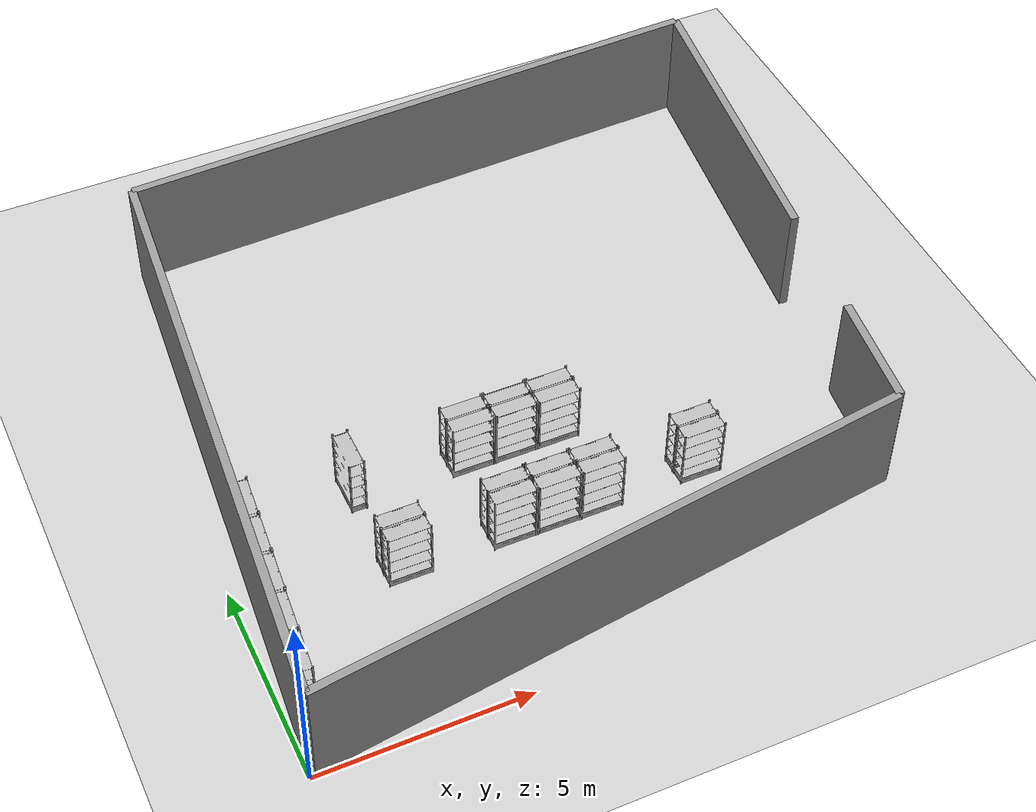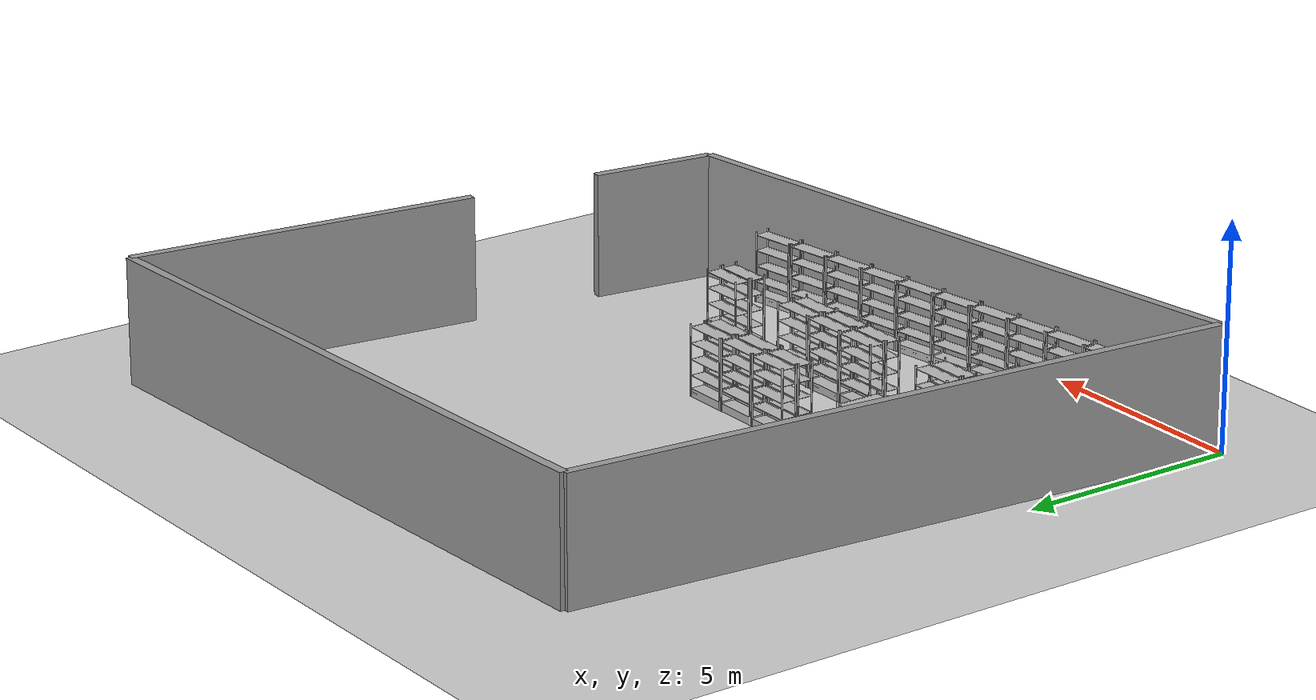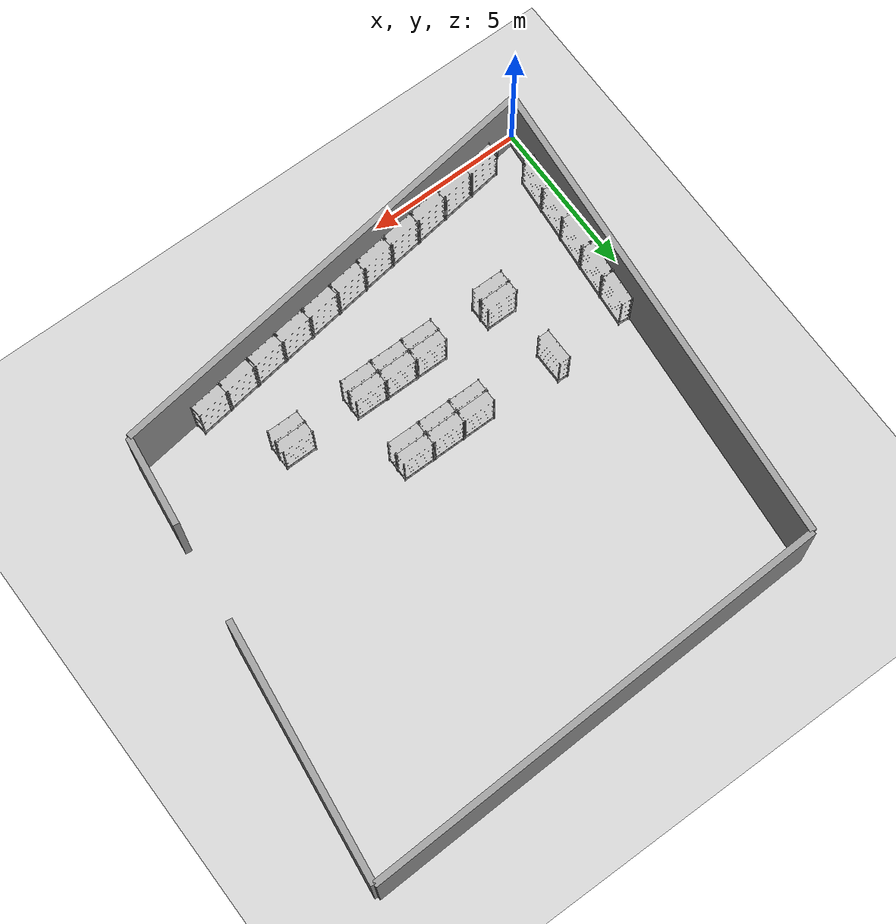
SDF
<sdf version="1.6">
 <world name="default">
  <model name="ground_plane">
   <static>1</static>
   <link name="link">
    <collision name="collision">
     <geometry><plane><normal>0 0 1</normal><size>100 100</size></plane></geometry>
     <surface>
      <contact><collide_bitmask>65535</collide_bitmask></contact>
      <friction><ode><mu>1000</mu><mu2>1000</mu2></ode></friction>
     </surface>
    </collision>
    <visual name="visual">
     <cast_shadows>0</cast_shadows>
     <geometry><plane><normal>0 0 1</normal><size>100 100</size></plane></geometry>
     <material>
      <script><uri>file://media/materials/scripts/gazebo.material</uri><name>Gazebo/Grey</name></script>
     </material>
    </visual>
   </link>
  </model>
  <model name="store_shelf_moduled_0">
   <link name="link">
    <collision name="collision">
     <geometry><mesh><uri>model://store_shelf_moduled/meshes/store_shelf_moduled.dae</uri></mesh></geometry>
    </collision>
    <visual name="visual">
     <geometry><mesh><uri>model://store_shelf_moduled/meshes/store_shelf_moduled.dae</uri></mesh></geometry>
    </visual>
    <inertial>
     <mass>1000</mass>
     <inertia>
      <ixx>840083</ixx>
      <ixy>0</ixy>
      <ixz>0</ixz>
      <iyy>475500</iyy>
      <iyz>0</iyz>
      <izz>1.30208e+06</izz>
     </inertia>
    </inertial>
   </link>
   <static>1</static>
   <pose>1.136614 0.3391 0 0 0 0.1342666</pose>
  </model>
  <model name="store_shelf_moduled_1">
   <link name="link">
    <collision name="collision">
     <geometry><mesh><uri>model://store_shelf_moduled/meshes/store_shelf_moduled.dae</uri></mesh></geometry>
    </collision>
    <visual name="visual">
     <geometry><mesh><uri>model://store_shelf_moduled/meshes/store_shelf_moduled.dae</uri></mesh></geometry>
    </visual>
    <inertial>
     <mass>1000</mass>
     <inertia>
      <ixx>840083</ixx>
      <ixy>0</ixy>
      <ixz>0</ixz>
      <iyy>475500</iyy>
      <iyz>0</iyz>
      <izz>1.30208e+06</izz>
     </inertia>
    </inertial>
   </link>
   <static>1</static>
   <pose>2.186614 0.4791 0 0 0 0.1342666</pose>
  </model>
  <model name="store_shelf_moduled_2">
   <link name="link">
    <collision name="collision">
     <geometry><mesh><uri>model://store_shelf_moduled/meshes/store_shelf_moduled.dae</uri></mesh></geometry>
    </collision>
    <visual name="visual">
     <geometry><mesh><uri>model://store_shelf_moduled/meshes/store_shelf_moduled.dae</uri></mesh></geometry>
    </visual>
    <inertial>
     <mass>1000</mass>
     <inertia>
      <ixx>840083</ixx>
      <ixy>0</ixy>
      <ixz>0</ixz>
      <iyy>475500</iyy>
      <iyz>0</iyz>
      <izz>1.30208e+06</izz>
     </inertia>
    </inertial>
   </link>
   <static>1</static>
   <pose>3.236614 0.6191 0 0 0 0.1342666</pose>
  </model>
  <model name="store_shelf_moduled_3">
   <link name="link">
    <collision name="collision">
     <geometry><mesh><uri>model://store_shelf_moduled/meshes/store_shelf_moduled.dae</uri></mesh></geometry>
    </collision>
    <visual name="visual">
     <geometry><mesh><uri>model://store_shelf_moduled/meshes/store_shelf_moduled.dae</uri></mesh></geometry>
    </visual>
    <inertial>
     <mass>1000</mass>
     <inertia>
      <ixx>840083</ixx>
      <ixy>0</ixy>
      <ixz>0</ixz>
      <iyy>475500</iyy>
      <iyz>0</iyz>
      <izz>1.30208e+06</izz>
     </inertia>
    </inertial>
   </link>
   <static>1</static>
   <pose>4.286614 0.7591 0 0 0 0.1342666</pose>
  </model>
  <model name="store_shelf_moduled_4">
   <link name="link">
    <collision name="collision">
     <geometry><mesh><uri>model://store_shelf_moduled/meshes/store_shelf_moduled.dae</uri></mesh></geometry>
    </collision>
    <visual name="visual">
     <geometry><mesh><uri>model://store_shelf_moduled/meshes/store_shelf_moduled.dae</uri></mesh></geometry>
    </visual>
    <inertial>
     <mass>1000</mass>
     <inertia>
      <ixx>840083</ixx>
      <ixy>0</ixy>
      <ixz>0</ixz>
      <iyy>475500</iyy>
      <iyz>0</iyz>
      <izz>1.30208e+06</izz>
     </inertia>
    </inertial>
   </link>
   <static>1</static>
   <pose>5.336614 0.8990999 0 0 0 0.1342666</pose>
  </model>
  <model name="store_shelf_moduled_5">
   <link name="link">
    <collision name="collision">
     <geometry><mesh><uri>model://store_shelf_moduled/meshes/store_shelf_moduled.dae</uri></mesh></geometry>
    </collision>
    <visual name="visual">
     <geometry><mesh><uri>model://store_shelf_moduled/meshes/store_shelf_moduled.dae</uri></mesh></geometry>
    </visual>
    <inertial>
     <mass>1000</mass>
     <inertia>
      <ixx>840083</ixx>
      <ixy>0</ixy>
      <ixz>0</ixz>
      <iyy>475500</iyy>
      <iyz>0</iyz>
      <izz>1.30208e+06</izz>
     </inertia>
    </inertial>
   </link>
   <static>1</static>
   <pose>6.386614 1.0491 0 0 0 0.1342666</pose>
  </model>
  <model name="store_shelf_moduled_6">
   <link name="link">
    <collision name="collision">
     <geometry><mesh><uri>model://store_shelf_moduled/meshes/store_shelf_moduled.dae</uri></mesh></geometry>
    </collision>
    <visual name="visual">
     <geometry><mesh><uri>model://store_shelf_moduled/meshes/store_shelf_moduled.dae</uri></mesh></geometry>
    </visual>
    <inertial>
     <mass>1000</mass>
     <inertia>
      <ixx>840083</ixx>
      <ixy>0</ixy>
      <ixz>0</ixz>
      <iyy>475500</iyy>
      <iyz>0</iyz>
      <izz>1.30208e+06</izz>
     </inertia>
    </inertial>
   </link>
   <static>1</static>
   <pose>7.436614 1.1891 0 0 0 0.1342666</pose>
  </model>
  <model name="store_shelf_moduled_7">
   <link name="link">
    <collision name="collision">
     <geometry><mesh><uri>model://store_shelf_moduled/meshes/store_shelf_moduled.dae</uri></mesh></geometry>
    </collision>
    <visual name="visual">
     <geometry><mesh><uri>model://store_shelf_moduled/meshes/store_shelf_moduled.dae</uri></mesh></geometry>
    </visual>
    <inertial>
     <mass>1000</mass>
     <inertia>
      <ixx>840083</ixx>
      <ixy>0</ixy>
      <ixz>0</ixz>
      <iyy>475500</iyy>
      <iyz>0</iyz>
      <izz>1.30208e+06</izz>
     </inertia>
    </inertial>
   </link>
   <static>1</static>
   <pose>8.486614 1.3291 0 0 0 0.1342666</pose>
  </model>
  <model name="store_shelf_moduled_8">
   <link name="link">
    <collision name="collision">
     <geometry><mesh><uri>model://store_shelf_moduled/meshes/store_shelf_moduled.dae</uri></mesh></geometry>
    </collision>
    <visual name="visual">
     <geometry><mesh><uri>model://store_shelf_moduled/meshes/store_shelf_moduled.dae</uri></mesh></geometry>
    </visual>
    <inertial>
     <mass>1000</mass>
     <inertia>
      <ixx>840083</ixx>
      <ixy>0</ixy>
      <ixz>0</ixz>
      <iyy>475500</iyy>
      <iyz>0</iyz>
      <izz>1.30208e+06</izz>
     </inertia>
    </inertial>
   </link>
   <static>1</static>
   <pose>9.536613 1.4691 0 0 0 0.1342666</pose>
  </model>
  <model name="store_shelf_moduled_9">
   <link name="link">
    <collision name="collision">
     <geometry><mesh><uri>model://store_shelf_moduled/meshes/store_shelf_moduled.dae</uri></mesh></geometry>
    </collision>
    <visual name="visual">
     <geometry><mesh><uri>model://store_shelf_moduled/meshes/store_shelf_moduled.dae</uri></mesh></geometry>
    </visual>
    <inertial>
     <mass>1000</mass>
     <inertia>
      <ixx>840083</ixx>
      <ixy>0</ixy>
      <ixz>0</ixz>
      <iyy>475500</iyy>
      <iyz>0</iyz>
      <izz>1.30208e+06</izz>
     </inertia>
    </inertial>
   </link>
   <static>1</static>
   <pose>10.58661 1.6091 0 0 0 0.1342666</pose>
  </model>
  <model name="store_shelf_moduled_10">
   <link name="link">
    <collision name="collision">
     <geometry><mesh><uri>model://store_shelf_moduled/meshes/store_shelf_moduled.dae</uri></mesh></geometry>
    </collision>
    <visual name="visual">
     <geometry><mesh><uri>model://store_shelf_moduled/meshes/store_shelf_moduled.dae</uri></mesh></geometry>
    </visual>
    <inertial>
     <mass>1000</mass>
     <inertia>
      <ixx>840083</ixx>
      <ixy>0</ixy>
      <ixz>0</ixz>
      <iyy>475500</iyy>
      <iyz>0</iyz>
      <izz>1.30208e+06</izz>
     </inertia>
    </inertial>
   </link>
   <static>1</static>
   <pose>11.63661 1.7591 0 0 0 0.1342666</pose>
  </model>
  <model name="store_shelf_moduled_30">
   <link name="link">
    <collision name="collision">
     <geometry><mesh><uri>model://store_shelf_moduled/meshes/store_shelf_moduled.dae</uri></mesh></geometry>
    </collision>
    <visual name="visual">
     <geometry><mesh><uri>model://store_shelf_moduled/meshes/store_shelf_moduled.dae</uri></mesh></geometry>
    </visual>
    <inertial>
     <mass>1000</mass>
     <inertia>
      <ixx>840083</ixx>
      <ixy>0</ixy>
      <ixz>0</ixz>
      <iyy>475500</iyy>
      <iyz>0</iyz>
      <izz>1.30208e+06</izz>
     </inertia>
    </inertial>
   </link>
   <static>1</static>
   <pose>0.7696238 6.701334 0 0 0 -1.657563</pose>
  </model>
  <model name="store_shelf_moduled_31">
   <link name="link">
    <collision name="collision">
     <geometry><mesh><uri>model://store_shelf_moduled/meshes/store_shelf_moduled.dae</uri></mesh></geometry>
    </collision>
    <visual name="visual">
     <geometry><mesh><uri>model://store_shelf_moduled/meshes/store_shelf_moduled.dae</uri></mesh></geometry>
    </visual>
    <inertial>
     <mass>1000</mass>
     <inertia>
      <ixx>840083</ixx>
      <ixy>0</ixy>
      <ixz>0</ixz>
      <iyy>475500</iyy>
      <iyz>0</iyz>
      <izz>1.30208e+06</izz>
     </inertia>
    </inertial>
   </link>
   <static>1</static>
   <pose>0.6796238 5.641334 0 0 0 -1.657563</pose>
  </model>
  <model name="store_shelf_moduled_32">
   <link name="link">
    <collision name="collision">
     <geometry><mesh><uri>model://store_shelf_moduled/meshes/store_shelf_moduled.dae</uri></mesh></geometry>
    </collision>
    <visual name="visual">
     <geometry><mesh><uri>model://store_shelf_moduled/meshes/store_shelf_moduled.dae</uri></mesh></geometry>
    </visual>
    <inertial>
     <mass>1000</mass>
     <inertia>
      <ixx>840083</ixx>
      <ixy>0</ixy>
      <ixz>0</ixz>
      <iyy>475500</iyy>
      <iyz>0</iyz>
      <izz>1.30208e+06</izz>
     </inertia>
    </inertial>
   </link>
   <static>1</static>
   <pose>0.5896238 4.581334 0 0 0 -1.657563</pose>
  </model>
  <model name="store_shelf_moduled_33">
   <link name="link">
    <collision name="collision">
     <geometry><mesh><uri>model://store_shelf_moduled/meshes/store_shelf_moduled.dae</uri></mesh></geometry>
    </collision>
    <visual name="visual">
     <geometry><mesh><uri>model://store_shelf_moduled/meshes/store_shelf_moduled.dae</uri></mesh></geometry>
    </visual>
    <inertial>
     <mass>1000</mass>
     <inertia>
      <ixx>840083</ixx>
      <ixy>0</ixy>
      <ixz>0</ixz>
      <iyy>475500</iyy>
      <iyz>0</iyz>
      <izz>1.30208e+06</izz>
     </inertia>
    </inertial>
   </link>
   <static>1</static>
   <pose>0.4896238 3.531334 0 0 0 -1.657563</pose>
  </model>
  <model name="store_shelf_moduled_34">
   <link name="link">
    <collision name="collision">
     <geometry><mesh><uri>model://store_shelf_moduled/meshes/store_shelf_moduled.dae</uri></mesh></geometry>
    </collision>
    <visual name="visual">
     <geometry><mesh><uri>model://store_shelf_moduled/meshes/store_shelf_moduled.dae</uri></mesh></geometry>
    </visual>
    <inertial>
     <mass>1000</mass>
     <inertia>
      <ixx>840083</ixx>
      <ixy>0</ixy>
      <ixz>0</ixz>
      <iyy>475500</iyy>
      <iyz>0</iyz>
      <izz>1.30208e+06</izz>
     </inertia>
    </inertial>
   </link>
   <static>1</static>
   <pose>0.3996238 2.471334 0 0 0 -1.657563</pose>
  </model>
  <model name="store_shelf_moduled_35">
   <link name="link">
    <collision name="collision">
     <geometry><mesh><uri>model://store_shelf_moduled/meshes/store_shelf_moduled.dae</uri></mesh></geometry>
    </collision>
    <visual name="visual">
     <geometry><mesh><uri>model://store_shelf_moduled/meshes/store_shelf_moduled.dae</uri></mesh></geometry>
    </visual>
    <inertial>
     <mass>1000</mass>
     <inertia>
      <ixx>840083</ixx>
      <ixy>0</ixy>
      <ixz>0</ixz>
      <iyy>475500</iyy>
      <iyz>0</iyz>
      <izz>1.30208e+06</izz>
     </inertia>
    </inertial>
   </link>
   <static>1</static>
   <pose>5.72 4.14 0 0 0 0</pose>
  </model>
  <model name="store_shelf_moduled_36">
   <link name="link">
    <collision name="collision">
     <geometry><mesh><uri>model://store_shelf_moduled/meshes/store_shelf_moduled.dae</uri></mesh></geometry>
    </collision>
    <visual name="visual">
     <geometry><mesh><uri>model://store_shelf_moduled/meshes/store_shelf_moduled.dae</uri></mesh></geometry>
    </visual>
    <inertial>
     <mass>1000</mass>
     <inertia>
      <ixx>840083</ixx>
      <ixy>0</ixy>
      <ixz>0</ixz>
      <iyy>475500</iyy>
      <iyz>0</iyz>
      <izz>1.30208e+06</izz>
     </inertia>
    </inertial>
   </link>
   <static>1</static>
   <pose>6.78 4.14 0 0 0 -3.141593</pose>
  </model>
  <model name="store_shelf_moduled_37">
   <link name="link">
    <collision name="collision">
     <geometry><mesh><uri>model://store_shelf_moduled/meshes/store_shelf_moduled.dae</uri></mesh></geometry>
    </collision>
    <visual name="visual">
     <geometry><mesh><uri>model://store_shelf_moduled/meshes/store_shelf_moduled.dae</uri></mesh></geometry>
    </visual>
    <inertial>
     <mass>1000</mass>
     <inertia>
      <ixx>840083</ixx>
      <ixy>0</ixy>
      <ixz>0</ixz>
      <iyy>475500</iyy>
      <iyz>0</iyz>
      <izz>1.30208e+06</izz>
     </inertia>
    </inertial>
   </link>
   <static>1</static>
   <pose>6.78 4.14 0 0 0 0</pose>
  </model>
  <model name="store_shelf_moduled_38">
   <link name="link">
    <collision name="collision">
     <geometry><mesh><uri>model://store_shelf_moduled/meshes/store_shelf_moduled.dae</uri></mesh></geometry>
    </collision>
    <visual name="visual">
     <geometry><mesh><uri>model://store_shelf_moduled/meshes/store_shelf_moduled.dae</uri></mesh></geometry>
    </visual>
    <inertial>
     <mass>1000</mass>
     <inertia>
      <ixx>840083</ixx>
      <ixy>0</ixy>
      <ixz>0</ixz>
      <iyy>475500</iyy>
      <iyz>0</iyz>
      <izz>1.30208e+06</izz>
     </inertia>
    </inertial>
   </link>
   <static>1</static>
   <pose>7.84 4.14 0 0 0 -3.141593</pose>
  </model>
  <model name="store_shelf_moduled_39">
   <link name="link">
    <collision name="collision">
     <geometry><mesh><uri>model://store_shelf_moduled/meshes/store_shelf_moduled.dae</uri></mesh></geometry>
    </collision>
    <visual name="visual">
     <geometry><mesh><uri>model://store_shelf_moduled/meshes/store_shelf_moduled.dae</uri></mesh></geometry>
    </visual>
    <inertial>
     <mass>1000</mass>
     <inertia>
      <ixx>840083</ixx>
      <ixy>0</ixy>
      <ixz>0</ixz>
      <iyy>475500</iyy>
      <iyz>0</iyz>
      <izz>1.30208e+06</izz>
     </inertia>
    </inertial>
   </link>
   <static>1</static>
   <pose>7.84 4.14 0 0 0 0</pose>
  </model>
  <model name="store_shelf_moduled_40">
   <link name="link">
    <collision name="collision">
     <geometry><mesh><uri>model://store_shelf_moduled/meshes/store_shelf_moduled.dae</uri></mesh></geometry>
    </collision>
    <visual name="visual">
     <geometry><mesh><uri>model://store_shelf_moduled/meshes/store_shelf_moduled.dae</uri></mesh></geometry>
    </visual>
    <inertial>
     <mass>1000</mass>
     <inertia>
      <ixx>840083</ixx>
      <ixy>0</ixy>
      <ixz>0</ixz>
      <iyy>475500</iyy>
      <iyz>0</iyz>
      <izz>1.30208e+06</izz>
     </inertia>
    </inertial>
   </link>
   <static>1</static>
   <pose>8.9 4.14 0 0 0 -3.141593</pose>
  </model>
  <model name="store_shelf_moduled_41">
   <link name="link">
    <collision name="collision">
     <geometry><mesh><uri>model://store_shelf_moduled/meshes/store_shelf_moduled.dae</uri></mesh></geometry>
    </collision>
    <visual name="visual">
     <geometry><mesh><uri>model://store_shelf_moduled/meshes/store_shelf_moduled.dae</uri></mesh></geometry>
    </visual>
    <inertial>
     <mass>1000</mass>
     <inertia>
      <ixx>840083</ixx>
      <ixy>0</ixy>
      <ixz>0</ixz>
      <iyy>475500</iyy>
      <iyz>0</iyz>
      <izz>1.30208e+06</izz>
     </inertia>
    </inertial>
   </link>
   <static>1</static>
   <pose>3.66 5.98 0 0 0 1.570796</pose>
  </model>
  <model name="store_shelf_moduled_53">
   <link name="link">
    <collision name="collision">
     <geometry><mesh><uri>model://store_shelf_moduled/meshes/store_shelf_moduled.dae</uri></mesh></geometry>
    </collision>
    <visual name="visual">
     <geometry><mesh><uri>model://store_shelf_moduled/meshes/store_shelf_moduled.dae</uri></mesh></geometry>
    </visual>
    <inertial>
     <mass>1000</mass>
     <inertia>
      <ixx>840083</ixx>
      <ixy>0</ixy>
      <ixz>0</ixz>
      <iyy>475500</iyy>
      <iyz>0</iyz>
      <izz>1.30208e+06</izz>
     </inertia>
    </inertial>
   </link>
   <static>1</static>
   <pose>3.24 4.14 0 0 0 0</pose>
  </model>
  <model name="store_shelf_moduled_54">
   <link name="link">
    <collision name="collision">
     <geometry><mesh><uri>model://store_shelf_moduled/meshes/store_shelf_moduled.dae</uri></mesh></geometry>
    </collision>
    <visual name="visual">
     <geometry><mesh><uri>model://store_shelf_moduled/meshes/store_shelf_moduled.dae</uri></mesh></geometry>
    </visual>
    <inertial>
     <mass>1000</mass>
     <inertia>
      <ixx>840083</ixx>
      <ixy>0</ixy>
      <ixz>0</ixz>
      <iyy>475500</iyy>
      <iyz>0</iyz>
      <izz>1.30208e+06</izz>
     </inertia>
    </inertial>
   </link>
   <static>1</static>
   <pose>4.3 4.14 0 0 0 -3.141593</pose>
  </model>
  <model name="store_shelf_moduled_59">
   <link name="link">
    <collision name="collision">
     <geometry><mesh><uri>model://store_shelf_moduled/meshes/store_shelf_moduled.dae</uri></mesh></geometry>
    </collision>
    <visual name="visual">
     <geometry><mesh><uri>model://store_shelf_moduled/meshes/store_shelf_moduled.dae</uri></mesh></geometry>
    </visual>
    <inertial>
     <mass>1000</mass>
     <inertia>
      <ixx>840083</ixx>
      <ixy>0</ixy>
      <ixz>0</ixz>
      <iyy>475500</iyy>
      <iyz>0</iyz>
      <izz>1.30208e+06</izz>
     </inertia>
    </inertial>
   </link>
   <static>1</static>
   <pose>10.32 4.14 0 0 0 0</pose>
  </model>
  <model name="store_shelf_moduled_60">
   <link name="link">
    <collision name="collision">
     <geometry><mesh><uri>model://store_shelf_moduled/meshes/store_shelf_moduled.dae</uri></mesh></geometry>
    </collision>
    <visual name="visual">
     <geometry><mesh><uri>model://store_shelf_moduled/meshes/store_shelf_moduled.dae</uri></mesh></geometry>
    </visual>
    <inertial>
     <mass>1000</mass>
     <inertia>
      <ixx>840083</ixx>
      <ixy>0</ixy>
      <ixz>0</ixz>
      <iyy>475500</iyy>
      <iyz>0</iyz>
      <izz>1.30208e+06</izz>
     </inertia>
    </inertial>
   </link>
   <static>1</static>
   <pose>11.38 4.14 0 0 0 -3.141593</pose>
  </model>
  <model name="store_shelf_moduled_61">
   <link name="link">
    <collision name="collision">
     <geometry><mesh><uri>model://store_shelf_moduled/meshes/store_shelf_moduled.dae</uri></mesh></geometry>
    </collision>
    <visual name="visual">
     <geometry><mesh><uri>model://store_shelf_moduled/meshes/store_shelf_moduled.dae</uri></mesh></geometry>
    </visual>
    <inertial>
     <mass>1000</mass>
     <inertia>
      <ixx>840083</ixx>
      <ixy>0</ixy>
      <ixz>0</ixz>
      <iyy>475500</iyy>
      <iyz>0</iyz>
      <izz>1.30208e+06</izz>
     </inertia>
    </inertial>
   </link>
   <static>1</static>
   <pose>5.72 6.4 0 0 0 0</pose>
  </model>
  <model name="store_shelf_moduled_62">
   <link name="link">
    <collision name="collision">
     <geometry><mesh><uri>model://store_shelf_moduled/meshes/store_shelf_moduled.dae</uri></mesh></geometry>
    </collision>
    <visual name="visual">
     <geometry><mesh><uri>model://store_shelf_moduled/meshes/store_shelf_moduled.dae</uri></mesh></geometry>
    </visual>
    <inertial>
     <mass>1000</mass>
     <inertia>
      <ixx>840083</ixx>
      <ixy>0</ixy>
      <ixz>0</ixz>
      <iyy>475500</iyy>
      <iyz>0</iyz>
      <izz>1.30208e+06</izz>
     </inertia>
    </inertial>
   </link>
   <static>1</static>
   <pose>6.78 6.4 0 0 0 -3.141593</pose>
  </model>
  <model name="store_shelf_moduled_63">
   <link name="link">
    <collision name="collision">
     <geometry><mesh><uri>model://store_shelf_moduled/meshes/store_shelf_moduled.dae</uri></mesh></geometry>
    </collision>
    <visual name="visual">
     <geometry><mesh><uri>model://store_shelf_moduled/meshes/store_shelf_moduled.dae</uri></mesh></geometry>
    </visual>
    <inertial>
     <mass>1000</mass>
     <inertia>
      <ixx>840083</ixx>
      <ixy>0</ixy>
      <ixz>0</ixz>
      <iyy>475500</iyy>
      <iyz>0</iyz>
      <izz>1.30208e+06</izz>
     </inertia>
    </inertial>
   </link>
   <static>1</static>
   <pose>6.78 6.4 0 0 0 0</pose>
  </model>
  <model name="store_shelf_moduled_64">
   <link name="link">
    <collision name="collision">
     <geometry><mesh><uri>model://store_shelf_moduled/meshes/store_shelf_moduled.dae</uri></mesh></geometry>
    </collision>
    <visual name="visual">
     <geometry><mesh><uri>model://store_shelf_moduled/meshes/store_shelf_moduled.dae</uri></mesh></geometry>
    </visual>
    <inertial>
     <mass>1000</mass>
     <inertia>
      <ixx>840083</ixx>
      <ixy>0</ixy>
      <ixz>0</ixz>
      <iyy>475500</iyy>
      <iyz>0</iyz>
      <izz>1.30208e+06</izz>
     </inertia>
    </inertial>
   </link>
   <static>1</static>
   <pose>7.84 6.4 0 0 0 -3.141593</pose>
  </model>
  <model name="store_shelf_moduled_65">
   <link name="link">
    <collision name="collision">
     <geometry><mesh><uri>model://store_shelf_moduled/meshes/store_shelf_moduled.dae</uri></mesh></geometry>
    </collision>
    <visual name="visual">
     <geometry><mesh><uri>model://store_shelf_moduled/meshes/store_shelf_moduled.dae</uri></mesh></geometry>
    </visual>
    <inertial>
     <mass>1000</mass>
     <inertia>
      <ixx>840083</ixx>
      <ixy>0</ixy>
      <ixz>0</ixz>
      <iyy>475500</iyy>
      <iyz>0</iyz>
      <izz>1.30208e+06</izz>
     </inertia>
    </inertial>
   </link>
   <static>1</static>
   <pose>7.84 6.4 0 0 0 0</pose>
  </model>
  <model name="store_shelf_moduled_66">
   <link name="link">
    <collision name="collision">
     <geometry><mesh><uri>model://store_shelf_moduled/meshes/store_shelf_moduled.dae</uri></mesh></geometry>
    </collision>
    <visual name="visual">
     <geometry><mesh><uri>model://store_shelf_moduled/meshes/store_shelf_moduled.dae</uri></mesh></geometry>
    </visual>
    <inertial>
     <mass>1000</mass>
     <inertia>
      <ixx>840083</ixx>
      <ixy>0</ixy>
      <ixz>0</ixz>
      <iyy>475500</iyy>
      <iyz>0</iyz>
      <izz>1.30208e+06</izz>
     </inertia>
    </inertial>
   </link>
   <static>1</static>
   <pose>8.9 6.4 0 0 0 -3.141593</pose>
  </model>
  <model name="grey_wall0">
   <static>1</static>
   <link name="link">
    <pose>7.355 1.08 1.4 0 0 0.1342666</pose>
    <visual name="visual">
     <cast_shadows>0</cast_shadows>
     <geometry><box><size>14.64178 0.2 2.8</size></box></geometry>
     <material>
      <name>vrc/grey_wall</name>
      <script>
       <uri>model://grey_wall/materials/scripts</uri>
       <uri>model://grey_wall/materials/textures</uri>
       <name>vrc/grey_wall</name>
      </script>
     </material>
    </visual>
    <collision name="collision">
     <geometry><box><size>14.64178 0.2 2.8</size></box></geometry>
     <max_contacts>5</max_contacts>
    </collision>
   </link>
  </model>
  <model name="grey_wall1">
   <static>1</static>
   <link name="link">
    <pose>14.785 3.465 1.4 0 0 1.446879</pose>
    <visual name="visual">
     <cast_shadows>0</cast_shadows>
     <geometry><box><size>2.831713 0.2 2.8</size></box></geometry>
     <material>
      <name>vrc/grey_wall</name>
      <script>
       <uri>model://grey_wall/materials/scripts</uri>
       <uri>model://grey_wall/materials/textures</uri>
       <name>vrc/grey_wall</name>
      </script>
     </material>
    </visual>
    <collision name="collision">
     <geometry><box><size>2.831713 0.2 2.8</size></box></geometry>
     <max_contacts>5</max_contacts>
    </collision>
   </link>
  </model>
  <model name="grey_wall2">
   <static>1</static>
   <link name="link">
    <pose>15.805 11.785 1.4 0 0 1.448162</pose>
    <visual name="visual">
     <cast_shadows>0</cast_shadows>
     <geometry><box><size>7.929553 0.2 2.8</size></box></geometry>
     <material>
      <name>vrc/grey_wall</name>
      <script>
       <uri>model://grey_wall/materials/scripts</uri>
       <uri>model://grey_wall/materials/textures</uri>
       <name>vrc/grey_wall</name>
      </script>
     </material>
    </visual>
    <collision name="collision">
     <geometry><box><size>7.929553 0.2 2.8</size></box></geometry>
     <max_contacts>5</max_contacts>
    </collision>
   </link>
  </model>
  <model name="grey_wall3">
   <static>1</static>
   <link name="link">
    <pose>8.85 15.44 1.4 0 0 -3.103976</pose>
    <visual name="visual">
     <cast_shadows>0</cast_shadows>
     <geometry><box><size>14.89053 0.2 2.8</size></box></geometry>
     <material>
      <name>vrc/grey_wall</name>
      <script>
       <uri>model://grey_wall/materials/scripts</uri>
       <uri>model://grey_wall/materials/textures</uri>
       <name>vrc/grey_wall</name>
      </script>
     </material>
    </visual>
    <collision name="collision">
     <geometry><box><size>14.89053 0.2 2.8</size></box></geometry>
     <max_contacts>5</max_contacts>
    </collision>
   </link>
  </model>
  <model name="grey_wall4">
   <static>1</static>
   <link name="link">
    <pose>0.755 7.63 1.4 0 0 -1.657563</pose>
    <visual name="visual">
     <cast_shadows>0</cast_shadows>
     <geometry><box><size>15.11687 0.2 2.8</size></box></geometry>
     <material>
      <name>vrc/grey_wall</name>
      <script>
       <uri>model://grey_wall/materials/scripts</uri>
       <uri>model://grey_wall/materials/textures</uri>
       <name>vrc/grey_wall</name>
      </script>
     </material>
    </visual>
    <collision name="collision">
     <geometry><box><size>15.11687 0.2 2.8</size></box></geometry>
     <max_contacts>5</max_contacts>
    </collision>
   </link>
  </model>
 </world>
</sdf>
